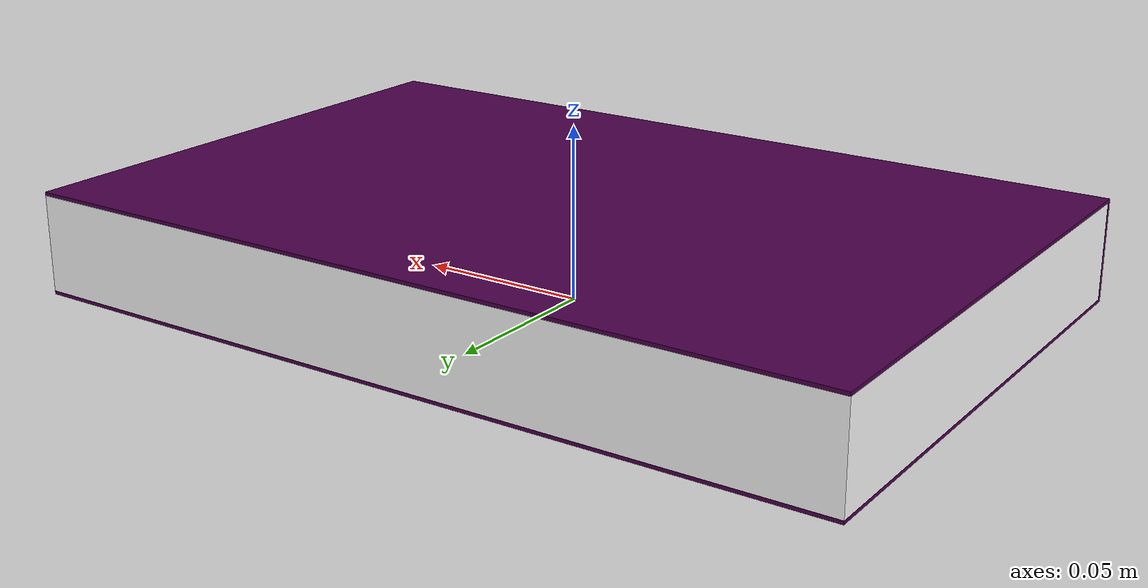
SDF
<?xml version='1.0'?>
<sdf version='1.6'>
  <model name='book_1'>
    <link name='cover'>
      <pose frame=''>0 -0.000108 0.015405 0 -0 0</pose>
      <self_collide>0</self_collide>
      <kinematic>0</kinematic>
      <mass>0.01</mass>
      <visual name='visual'>
        <geometry>
          <box>
            <size>0.245 0.16 0.03</size>
          </box>
        </geometry>
        <material>
          <lighting>1</lighting>
          <ambient>0.3 0 0.3 1</ambient>
          <diffuse>0.3 0 0.3 1</diffuse>
          <specular>0.01 0.01 0.01 1</specular>
          <emissive>0 0 0 1</emissive>
          <shader type='vertex'>
            <normal_map>__default__</normal_map>
          </shader>
        </material>
	      <material>
          <script>
            <lighting>1</lighting>
            <uri>model://book_1/materials/scripts</uri>
            <uri>model://book_1/materials/textures</uri>
            <name>book_1</name>
          </script>
        </material>
        <cast_shadows>1</cast_shadows>
        <transparency>0</transparency>
      </visual>
      <collision name='collision'>
        <laser_retro>0</laser_retro>
        <max_contacts>10</max_contacts>
          <geometry>
          <box>
            <size>0.245 0.16 0.03</size>
          </box>
        </geometry>
       </collision>
    </link>
    <link name='page'>
      <pose frame=''>0 0.000608 0.015405 0 -0 0</pose>
       <visual name='visual'>
        <pose frame=''>0 0 0 0 -0 0</pose>
        <geometry>
          <box>
            <size>0.24502 0.15862 0.028</size>
          </box>
        </geometry>
        <material>
          <lighting>1</lighting>
           <ambient>1 1 1 1</ambient>
          <diffuse>1 1 1 1</diffuse>
          <specular>0.01 0.01 0.01 1</specular>
          <emissive>0 0 0 1</emissive>
          <shader type='vertex'>
            <normal_map>__default__</normal_map>
          </shader>
        </material>
        <cast_shadows>1</cast_shadows>
        <transparency>0</transparency>
      </visual>
      <collision name='collision'>
        <laser_retro>0</laser_retro>
        <max_contacts>10</max_contacts>
        <pose frame=''>0 0 0 0 -0 0</pose>
        <geometry>
          <box>
            <size>0.245 0.16 0.03</size>
          </box>
        </geometry>
        <surface>
          <friction>
            <ode>
              <mu>100</mu>
              <mu2>100</mu2>
            </ode>
          </friction>
        </surface>
        <contact>
          <ode>
            <max_vel>0</max_vel>
            <min_depth>0.001</min_depth>
          </ode>
        </contact>
      </collision>
    </link>
    <joint type="fixed" name="book_center">
      <pose>0 0 0 0 0 0</pose>
      <child>page</child>
      <parent>cover</parent>
      <axis>
        <xyz>0 1 0</xyz>
      </axis>
    </joint>
    <allow_auto_disable>1</allow_auto_disable>
  </model>
</sdf>
